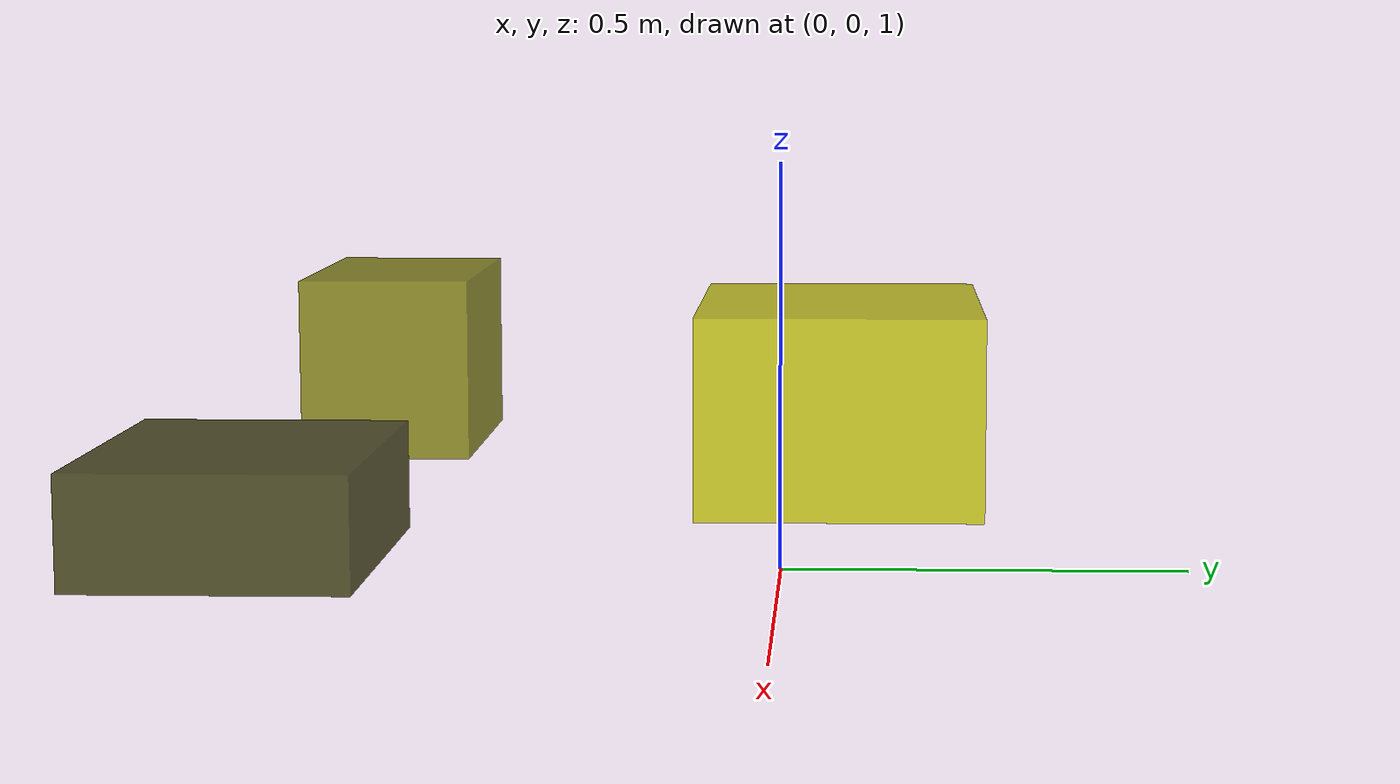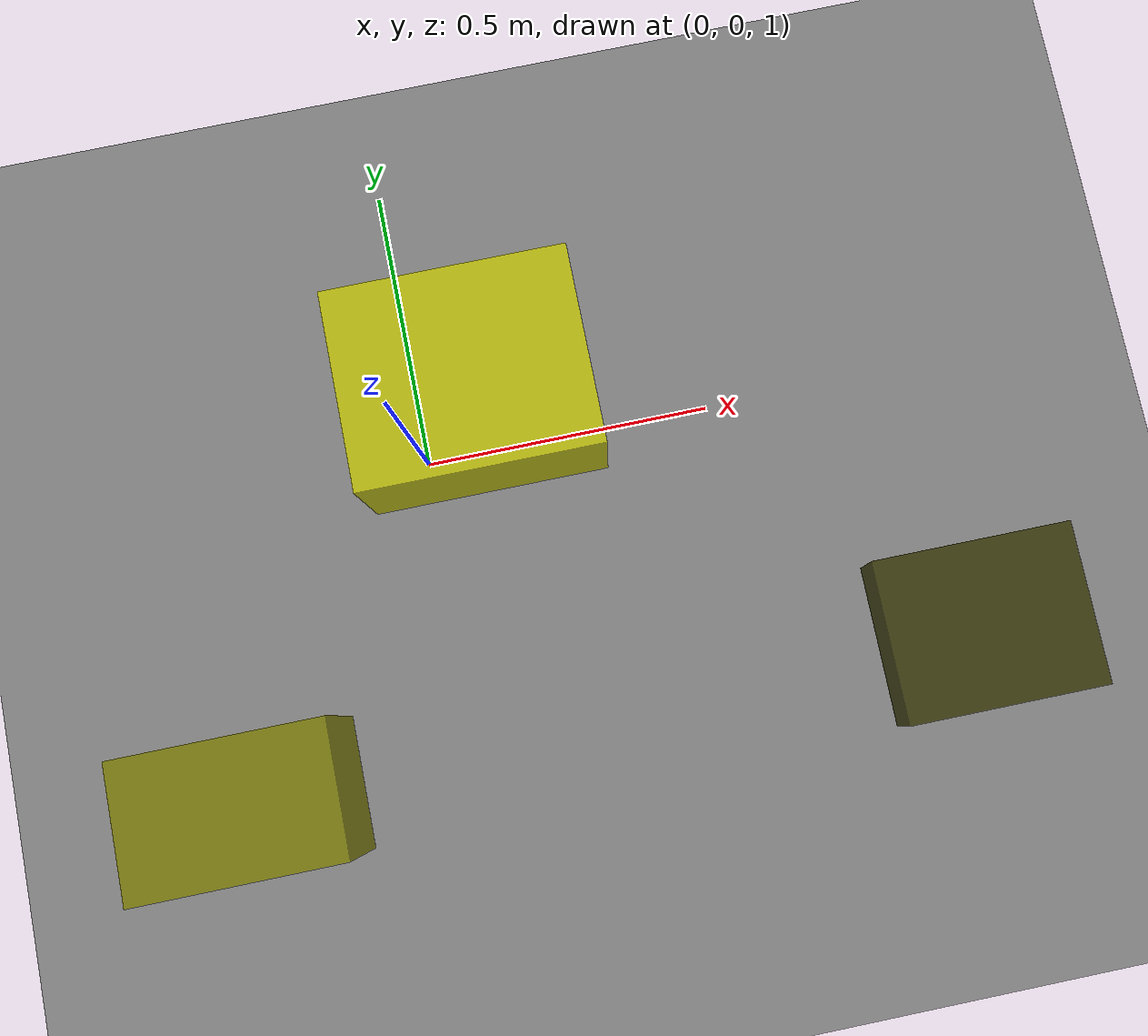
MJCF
<?xml version="1.0"?>
<mujoco model="obstacle_scene">
  <compiler angle="radian" coordinate="local"/>
  <option timestep="0.001" gravity="0 0 -9.81"/>

  <asset>
    <material name="obstacle_mat" rgba="0.8 0.8 0.0 0.8"/>
    <material name="ground_mat" rgba="0.5 0.5 0.5 1"/>
  </asset>

  <worldbody>
    <!-- Ground plane -->
    <geom name="ground" type="plane" size="3 3 0.1" material="ground_mat"/>

    <!-- Obstacles -->
    <body name="obstacle_0" pos="0.832871 -0.476994 1.232043">
      <geom name="obs_0" type="box" size="0.159597 0.129750 0.053310" rgba="0.2 0.2 0.0 0.8"/>
    </body>
    <body name="obstacle_1" pos="-0.362613 -0.520729 1.218310">
      <geom name="obs_1" type="box" size="0.168985 0.109311 0.115660" rgba="0.5 0.5 0.0 0.8"/>
    </body>
    <body name="obstacle_2" pos="0.106934 0.072707 1.229811">
      <geom name="obs_2" type="box" size="0.198110 0.162612 0.114291" rgba="0.8 0.8 0.0 0.8"/>
    </body>
  </worldbody>
</mujoco>
